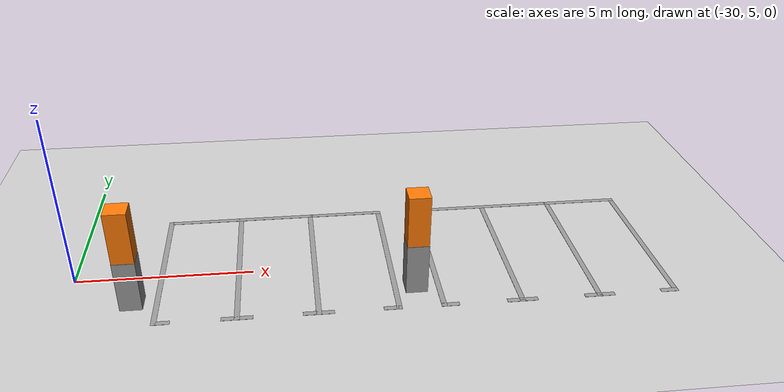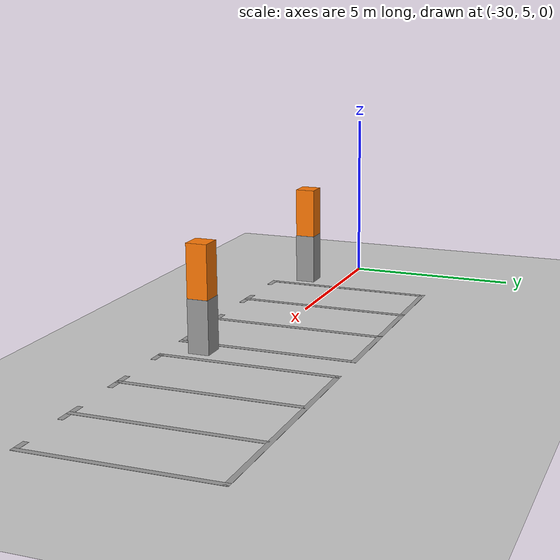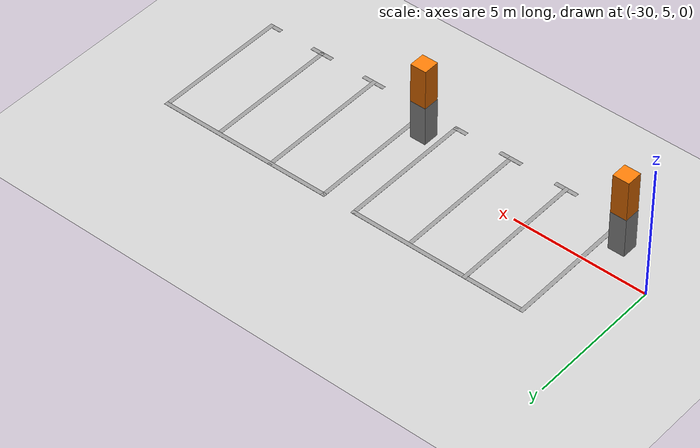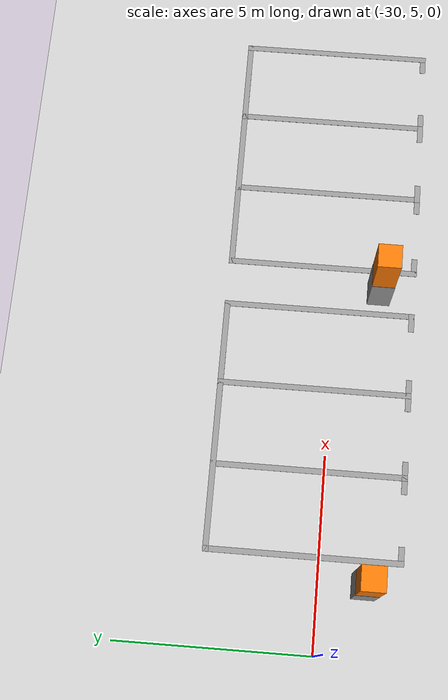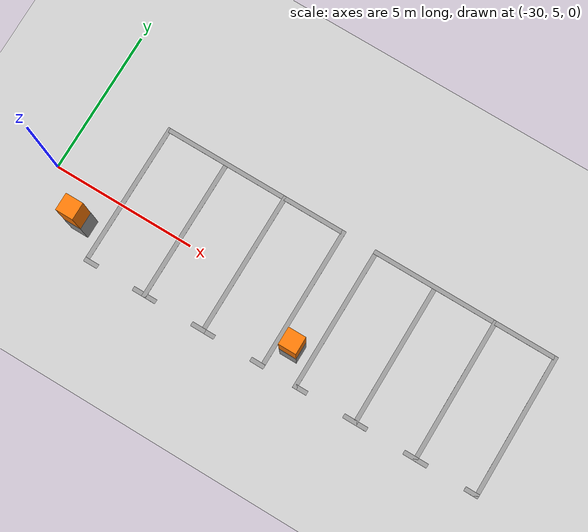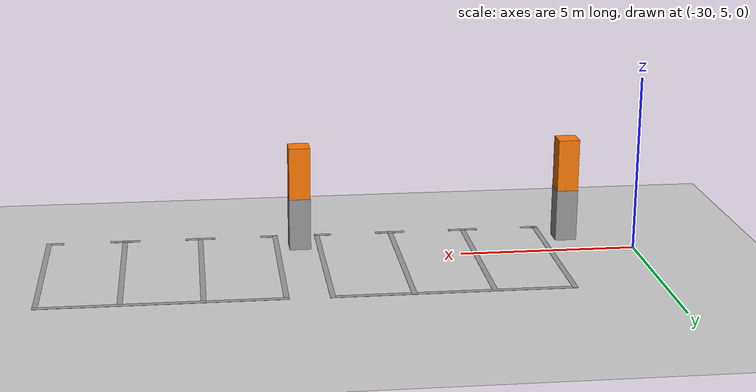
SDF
<sdf version="1.7">
 <world name="default">
  <model name="ground_plane">
   <static>1</static>
   <link name="link">
    <collision name="collision">
     <geometry><plane><normal>0 0 1</normal><size>100 100</size></plane></geometry>
     <surface><friction><ode><mu>100</mu><mu2>50</mu2></ode></friction></surface>
    </collision>
    <visual name="visual">
     <cast_shadows>0</cast_shadows>
     <geometry><plane><normal>0 0 1</normal><size>100 100</size></plane></geometry>
     <material>
      <script><uri>file://media/materials/scripts/gazebo.material</uri><name>Gazebo/Grey</name></script>
     </material>
    </visual>
   </link>
  </model>
  <model name="carport1">
   <pose>-24.7621 7.13589 0 0 -0 0</pose>
   <link name="Wall_105">
    <collision name="Wall_105_Collision">
     <geometry><box><size>0.61 0.6 1.5</size></box></geometry>
     <pose>0 0 0.75 0 -0 0</pose>
    </collision>
    <visual name="Wall_105_Visual">
     <pose>0 0 0.75 0 -0 0</pose>
     <geometry><box><size>0.61 0.6 1.5</size></box></geometry>
     <material>
      <script><uri>file://media/materials/scripts/gazebo.material</uri><name>Gazebo/Grey</name></script>
      <ambient>1 1 1 1</ambient>
     </material>
     <meta><layer>0</layer></meta>
    </visual>
    <pose>-3.47407 -3.2865 0 0 -0 0</pose>
   </link>
   <link name="Wall_116">
    <collision name="Wall_116_Collision">
     <geometry><box><size>5.1 0.15 0.005</size></box></geometry>
     <pose>0 0 0.0025 0 -0 0</pose>
    </collision>
    <visual name="Wall_116_Visual">
     <pose>0 0 0.0025 0 -0 0</pose>
     <geometry><box><size>5.1 0.15 0.005</size></box></geometry>
     <material>
      <script><uri>file://media/materials/scripts/gazebo.material</uri><name>Gazebo/Grey</name></script>
      <ambient>1 1 1 1</ambient>
     </material>
     <meta><layer>0</layer></meta>
    </visual>
    <pose>-2.82307 -1.7385 0 0 -0 1.5708</pose>
   </link>
   <link name="Wall_124">
    <collision name="Wall_124_Collision">
     <geometry><box><size>5.1 0.15 0.005</size></box></geometry>
     <pose>0 0 0.0025 0 -0 0</pose>
    </collision>
    <visual name="Wall_124_Visual">
     <pose>0 0 0.0025 0 -0 0</pose>
     <geometry><box><size>5.1 0.15 0.005</size></box></geometry>
     <material>
      <script><uri>file://media/materials/scripts/gazebo.material</uri><name>Gazebo/Grey</name></script>
      <ambient>1 1 1 1</ambient>
     </material>
     <meta><layer>0</layer></meta>
    </visual>
    <pose>3.70393 -1.7305 0 0 -0 1.5708</pose>
   </link>
   <link name="Wall_146">
    <collision name="Wall_146_Collision">
     <geometry><box><size>6.67711 0.15 0.005</size></box></geometry>
     <pose>0 0 0.0025 0 -0 0</pose>
    </collision>
    <visual name="Wall_146_Visual">
     <pose>0 0 0.0025 0 -0 0</pose>
     <geometry><box><size>6.67711 0.15 0.005</size></box></geometry>
     <material>
      <script><uri>file://media/materials/scripts/gazebo.material</uri><name>Gazebo/Grey</name></script>
      <ambient>1 1 1 1</ambient>
     </material>
     <meta><layer>0</layer></meta>
    </visual>
    <pose>0.440428 0.7405 0 0 -0 0.001226</pose>
   </link>
   <link name="Wall_168">
    <collision name="Wall_168_Collision">
     <geometry><box><size>5.1 0.15 0.005</size></box></geometry>
     <pose>0 0 0.0025 0 -0 0</pose>
    </collision>
    <visual name="Wall_168_Visual">
     <pose>0 0 0.0025 0 -0 0</pose>
     <geometry><box><size>5.1 0.15 0.005</size></box></geometry>
     <material>
      <script><uri>file://media/materials/scripts/gazebo.material</uri><name>Gazebo/Grey</name></script>
      <ambient>1 1 1 1</ambient>
     </material>
     <meta><layer>0</layer></meta>
    </visual>
    <pose>-0.64827 -1.73839 0 0 -0 1.57088</pose>
   </link>
   <link name="Wall_173">
    <collision name="Wall_173_Collision">
     <geometry><box><size>5.1 0.15 0.005</size></box></geometry>
     <pose>0 0 0.0025 0 -0 0</pose>
    </collision>
    <visual name="Wall_173_Visual">
     <pose>0 0 0.0025 0 -0 0</pose>
     <geometry><box><size>5.1 0.15 0.005</size></box></geometry>
     <material>
      <script><uri>file://media/materials/scripts/gazebo.material</uri><name>Gazebo/Grey</name></script>
      <ambient>1 1 1 1</ambient>
     </material>
     <meta><layer>0</layer></meta>
    </visual>
    <pose>1.52673 -1.73839 0 0 -0 1.57088</pose>
   </link>
   <link name="Wall_177">
    <collision name="Wall_177_Collision">
     <geometry><box><size>0.6 0.59 3</size></box></geometry>
     <pose>0 0 1.5 0 -0 0</pose>
    </collision>
    <visual name="Wall_177_Visual">
     <pose>0 0 1.5 0 -0 0</pose>
     <geometry><box><size>0.6 0.59 3</size></box></geometry>
     <material>
      <script><uri>file://media/materials/scripts/gazebo.material</uri><name>Gazebo/Grey</name></script>
      <ambient>0.996078 0.47451 0.0196078 1</ambient>
     </material>
     <meta><layer>0</layer></meta>
    </visual>
    <pose>-3.47407 -3.2865 0 0 -0 0</pose>
   </link>
   <link name="Wall_179">
    <collision name="Wall_179_Collision">
     <geometry><box><size>0.5 0.15 0.005</size></box></geometry>
     <pose>0 0 0.0025 0 -0 0</pose>
    </collision>
    <visual name="Wall_179_Visual">
     <pose>0 0 0.0025 0 -0 0</pose>
     <geometry><box><size>0.5 0.15 0.005</size></box></geometry>
     <material>
      <script><uri>file://media/materials/scripts/gazebo.material</uri><name>Gazebo/Grey</name></script>
      <ambient>1 1 1 1</ambient>
     </material>
     <meta><layer>0</layer></meta>
    </visual>
    <pose>-2.64807 -4.2135 0 0 -0 0</pose>
   </link>
   <link name="Wall_181">
    <collision name="Wall_181_Collision">
     <geometry><box><size>0.5 0.15 0.005</size></box></geometry>
     <pose>0 0 0.0025 0 -0 0</pose>
    </collision>
    <visual name="Wall_181_Visual">
     <pose>0 0 0.0025 0 -0 0</pose>
     <geometry><box><size>0.5 0.15 0.005</size></box></geometry>
     <material>
      <script><uri>file://media/materials/scripts/gazebo.material</uri><name>Gazebo/Grey</name></script>
      <ambient>1 1 1 1</ambient>
     </material>
     <meta><layer>0</layer></meta>
    </visual>
    <pose>-0.823072 -4.2135 0 0 -0 3.14159</pose>
   </link>
   <link name="Wall_183">
    <collision name="Wall_183_Collision">
     <geometry><box><size>0.5 0.15 0.005</size></box></geometry>
     <pose>0 0 0.0025 0 -0 0</pose>
    </collision>
    <visual name="Wall_183_Visual">
     <pose>0 0 0.0025 0 -0 0</pose>
     <geometry><box><size>0.5 0.15 0.005</size></box></geometry>
     <material>
      <script><uri>file://media/materials/scripts/gazebo.material</uri><name>Gazebo/Grey</name></script>
      <ambient>1 1 1 1</ambient>
     </material>
     <meta><layer>0</layer></meta>
    </visual>
    <pose>-0.473072 -4.2135 0 0 -0 0</pose>
   </link>
   <link name="Wall_185">
    <collision name="Wall_185_Collision">
     <geometry><box><size>0.5 0.15 0.005</size></box></geometry>
     <pose>0 0 0.0025 0 -0 0</pose>
    </collision>
    <visual name="Wall_185_Visual">
     <pose>0 0 0.0025 0 -0 0</pose>
     <geometry><box><size>0.5 0.15 0.005</size></box></geometry>
     <material>
      <script><uri>file://media/materials/scripts/gazebo.material</uri><name>Gazebo/Grey</name></script>
      <ambient>1 1 1 1</ambient>
     </material>
     <meta><layer>0</layer></meta>
    </visual>
    <pose>1.35193 -4.2135 0 0 -0 3.14159</pose>
   </link>
   <link name="Wall_187">
    <collision name="Wall_187_Collision">
     <geometry><box><size>0.5 0.15 0.005</size></box></geometry>
     <pose>0 0 0.0025 0 -0 0</pose>
    </collision>
    <visual name="Wall_187_Visual">
     <pose>0 0 0.0025 0 -0 0</pose>
     <geometry><box><size>0.5 0.15 0.005</size></box></geometry>
     <material>
      <script><uri>file://media/materials/scripts/gazebo.material</uri><name>Gazebo/Grey</name></script>
      <ambient>1 1 1 1</ambient>
     </material>
     <meta><layer>0</layer></meta>
    </visual>
    <pose>1.70193 -4.2135 0 0 -0 0</pose>
   </link>
   <link name="Wall_189">
    <collision name="Wall_189_Collision">
     <geometry><box><size>0.5 0.15 0.005</size></box></geometry>
     <pose>0 0 0.0025 0 -0 0</pose>
    </collision>
    <visual name="Wall_189_Visual">
     <pose>0 0 0.0025 0 -0 0</pose>
     <geometry><box><size>0.5 0.15 0.005</size></box></geometry>
     <material>
      <script><uri>file://media/materials/scripts/gazebo.material</uri><name>Gazebo/Grey</name></script>
      <ambient>1 1 1 1</ambient>
     </material>
     <meta><layer>0</layer></meta>
    </visual>
    <pose>3.52893 -4.2055 0 0 -0 3.14159</pose>
   </link>
   <static>1</static>
  </model>
  <model name="carport1_0">
   <pose>-17.0144 7.13604 0 0 -0 0</pose>
   <link name="Wall_105">
    <collision name="Wall_105_Collision">
     <geometry><box><size>0.61 0.6 1.5</size></box></geometry>
     <pose>0 0 0.75 0 -0 0</pose>
    </collision>
    <visual name="Wall_105_Visual">
     <pose>0 0 0.75 0 -0 0</pose>
     <geometry><box><size>0.61 0.6 1.5</size></box></geometry>
     <material>
      <script><uri>file://media/materials/scripts/gazebo.material</uri><name>Gazebo/Grey</name></script>
      <ambient>1 1 1 1</ambient>
     </material>
     <meta><layer>0</layer></meta>
    </visual>
    <pose>-3.47407 -3.2865 0 0 -0 0</pose>
   </link>
   <link name="Wall_116">
    <collision name="Wall_116_Collision">
     <geometry><box><size>5.1 0.15 0.005</size></box></geometry>
     <pose>0 0 0.0025 0 -0 0</pose>
    </collision>
    <visual name="Wall_116_Visual">
     <pose>0 0 0.0025 0 -0 0</pose>
     <geometry><box><size>5.1 0.15 0.005</size></box></geometry>
     <material>
      <script><uri>file://media/materials/scripts/gazebo.material</uri><name>Gazebo/Grey</name></script>
      <ambient>1 1 1 1</ambient>
     </material>
     <meta><layer>0</layer></meta>
    </visual>
    <pose>-2.82307 -1.7385 0 0 -0 1.5708</pose>
   </link>
   <link name="Wall_124">
    <collision name="Wall_124_Collision">
     <geometry><box><size>5.1 0.15 0.005</size></box></geometry>
     <pose>0 0 0.0025 0 -0 0</pose>
    </collision>
    <visual name="Wall_124_Visual">
     <pose>0 0 0.0025 0 -0 0</pose>
     <geometry><box><size>5.1 0.15 0.005</size></box></geometry>
     <material>
      <script><uri>file://media/materials/scripts/gazebo.material</uri><name>Gazebo/Grey</name></script>
      <ambient>1 1 1 1</ambient>
     </material>
     <meta><layer>0</layer></meta>
    </visual>
    <pose>3.70393 -1.7305 0 0 -0 1.5708</pose>
   </link>
   <link name="Wall_146">
    <collision name="Wall_146_Collision">
     <geometry><box><size>6.67711 0.15 0.005</size></box></geometry>
     <pose>0 0 0.0025 0 -0 0</pose>
    </collision>
    <visual name="Wall_146_Visual">
     <pose>0 0 0.0025 0 -0 0</pose>
     <geometry><box><size>6.67711 0.15 0.005</size></box></geometry>
     <material>
      <script><uri>file://media/materials/scripts/gazebo.material</uri><name>Gazebo/Grey</name></script>
      <ambient>1 1 1 1</ambient>
     </material>
     <meta><layer>0</layer></meta>
    </visual>
    <pose>0.440428 0.7405 0 0 -0 0.001226</pose>
   </link>
   <link name="Wall_168">
    <collision name="Wall_168_Collision">
     <geometry><box><size>5.1 0.15 0.005</size></box></geometry>
     <pose>0 0 0.0025 0 -0 0</pose>
    </collision>
    <visual name="Wall_168_Visual">
     <pose>0 0 0.0025 0 -0 0</pose>
     <geometry><box><size>5.1 0.15 0.005</size></box></geometry>
     <material>
      <script><uri>file://media/materials/scripts/gazebo.material</uri><name>Gazebo/Grey</name></script>
      <ambient>1 1 1 1</ambient>
     </material>
     <meta><layer>0</layer></meta>
    </visual>
    <pose>-0.64827 -1.73839 0 0 -0 1.57088</pose>
   </link>
   <link name="Wall_173">
    <collision name="Wall_173_Collision">
     <geometry><box><size>5.1 0.15 0.005</size></box></geometry>
     <pose>0 0 0.0025 0 -0 0</pose>
    </collision>
    <visual name="Wall_173_Visual">
     <pose>0 0 0.0025 0 -0 0</pose>
     <geometry><box><size>5.1 0.15 0.005</size></box></geometry>
     <material>
      <script><uri>file://media/materials/scripts/gazebo.material</uri><name>Gazebo/Grey</name></script>
      <ambient>1 1 1 1</ambient>
     </material>
     <meta><layer>0</layer></meta>
    </visual>
    <pose>1.52673 -1.73839 0 0 -0 1.57088</pose>
   </link>
   <link name="Wall_177">
    <collision name="Wall_177_Collision">
     <geometry><box><size>0.6 0.59 3</size></box></geometry>
     <pose>0 0 1.5 0 -0 0</pose>
    </collision>
    <visual name="Wall_177_Visual">
     <pose>0 0 1.5 0 -0 0</pose>
     <geometry><box><size>0.6 0.59 3</size></box></geometry>
     <material>
      <script><uri>file://media/materials/scripts/gazebo.material</uri><name>Gazebo/Grey</name></script>
      <ambient>0.996078 0.47451 0.0196078 1</ambient>
     </material>
     <meta><layer>0</layer></meta>
    </visual>
    <pose>-3.47407 -3.2865 0 0 -0 0</pose>
   </link>
   <link name="Wall_179">
    <collision name="Wall_179_Collision">
     <geometry><box><size>0.5 0.15 0.005</size></box></geometry>
     <pose>0 0 0.0025 0 -0 0</pose>
    </collision>
    <visual name="Wall_179_Visual">
     <pose>0 0 0.0025 0 -0 0</pose>
     <geometry><box><size>0.5 0.15 0.005</size></box></geometry>
     <material>
      <script><uri>file://media/materials/scripts/gazebo.material</uri><name>Gazebo/Grey</name></script>
      <ambient>1 1 1 1</ambient>
     </material>
     <meta><layer>0</layer></meta>
    </visual>
    <pose>-2.64807 -4.2135 0 0 -0 0</pose>
   </link>
   <link name="Wall_181">
    <collision name="Wall_181_Collision">
     <geometry><box><size>0.5 0.15 0.005</size></box></geometry>
     <pose>0 0 0.0025 0 -0 0</pose>
    </collision>
    <visual name="Wall_181_Visual">
     <pose>0 0 0.0025 0 -0 0</pose>
     <geometry><box><size>0.5 0.15 0.005</size></box></geometry>
     <material>
      <script><uri>file://media/materials/scripts/gazebo.material</uri><name>Gazebo/Grey</name></script>
      <ambient>1 1 1 1</ambient>
     </material>
     <meta><layer>0</layer></meta>
    </visual>
    <pose>-0.823072 -4.2135 0 0 -0 3.14159</pose>
   </link>
   <link name="Wall_183">
    <collision name="Wall_183_Collision">
     <geometry><box><size>0.5 0.15 0.005</size></box></geometry>
     <pose>0 0 0.0025 0 -0 0</pose>
    </collision>
    <visual name="Wall_183_Visual">
     <pose>0 0 0.0025 0 -0 0</pose>
     <geometry><box><size>0.5 0.15 0.005</size></box></geometry>
     <material>
      <script><uri>file://media/materials/scripts/gazebo.material</uri><name>Gazebo/Grey</name></script>
      <ambient>1 1 1 1</ambient>
     </material>
     <meta><layer>0</layer></meta>
    </visual>
    <pose>-0.473072 -4.2135 0 0 -0 0</pose>
   </link>
   <link name="Wall_185">
    <collision name="Wall_185_Collision">
     <geometry><box><size>0.5 0.15 0.005</size></box></geometry>
     <pose>0 0 0.0025 0 -0 0</pose>
    </collision>
    <visual name="Wall_185_Visual">
     <pose>0 0 0.0025 0 -0 0</pose>
     <geometry><box><size>0.5 0.15 0.005</size></box></geometry>
     <material>
      <script><uri>file://media/materials/scripts/gazebo.material</uri><name>Gazebo/Grey</name></script>
      <ambient>1 1 1 1</ambient>
     </material>
     <meta><layer>0</layer></meta>
    </visual>
    <pose>1.35193 -4.2135 0 0 -0 3.14159</pose>
   </link>
   <link name="Wall_187">
    <collision name="Wall_187_Collision">
     <geometry><box><size>0.5 0.15 0.005</size></box></geometry>
     <pose>0 0 0.0025 0 -0 0</pose>
    </collision>
    <visual name="Wall_187_Visual">
     <pose>0 0 0.0025 0 -0 0</pose>
     <geometry><box><size>0.5 0.15 0.005</size></box></geometry>
     <material>
      <script><uri>file://media/materials/scripts/gazebo.material</uri><name>Gazebo/Grey</name></script>
      <ambient>1 1 1 1</ambient>
     </material>
     <meta><layer>0</layer></meta>
    </visual>
    <pose>1.70193 -4.2135 0 0 -0 0</pose>
   </link>
   <link name="Wall_189">
    <collision name="Wall_189_Collision">
     <geometry><box><size>0.5 0.15 0.005</size></box></geometry>
     <pose>0 0 0.0025 0 -0 0</pose>
    </collision>
    <visual name="Wall_189_Visual">
     <pose>0 0 0.0025 0 -0 0</pose>
     <geometry><box><size>0.5 0.15 0.005</size></box></geometry>
     <material>
      <script><uri>file://media/materials/scripts/gazebo.material</uri><name>Gazebo/Grey</name></script>
      <ambient>1 1 1 1</ambient>
     </material>
     <meta><layer>0</layer></meta>
    </visual>
    <pose>3.52893 -4.2055 0 0 -0 3.14159</pose>
   </link>
   <static>1</static>
  </model>
 </world>
</sdf>
